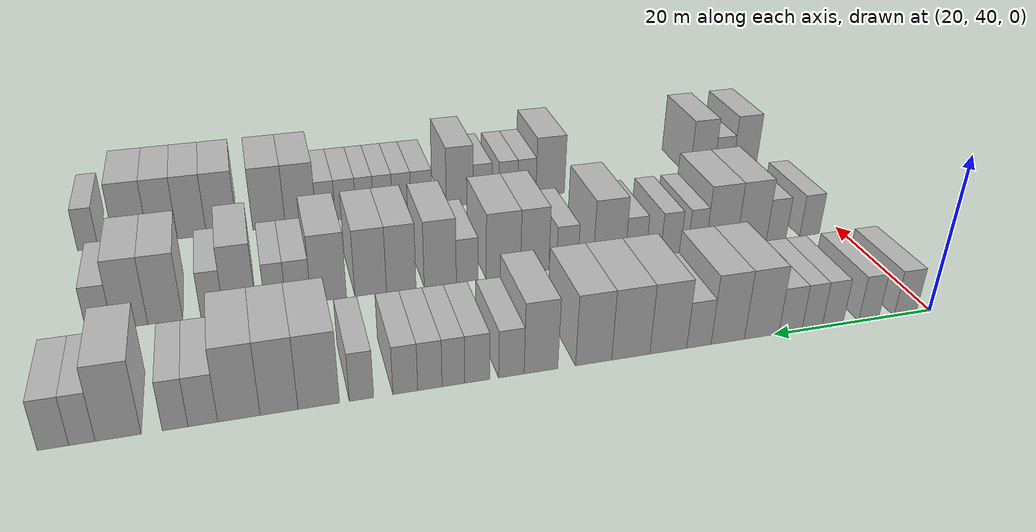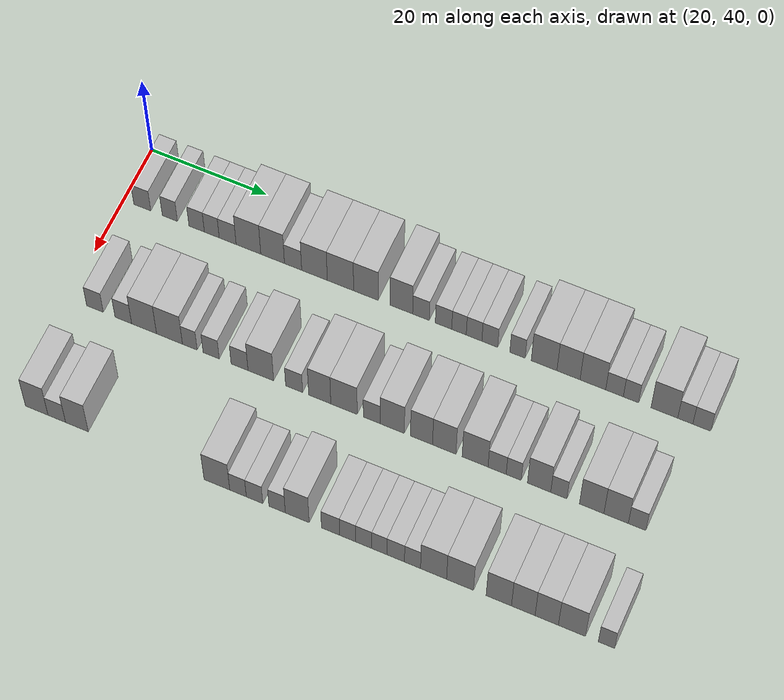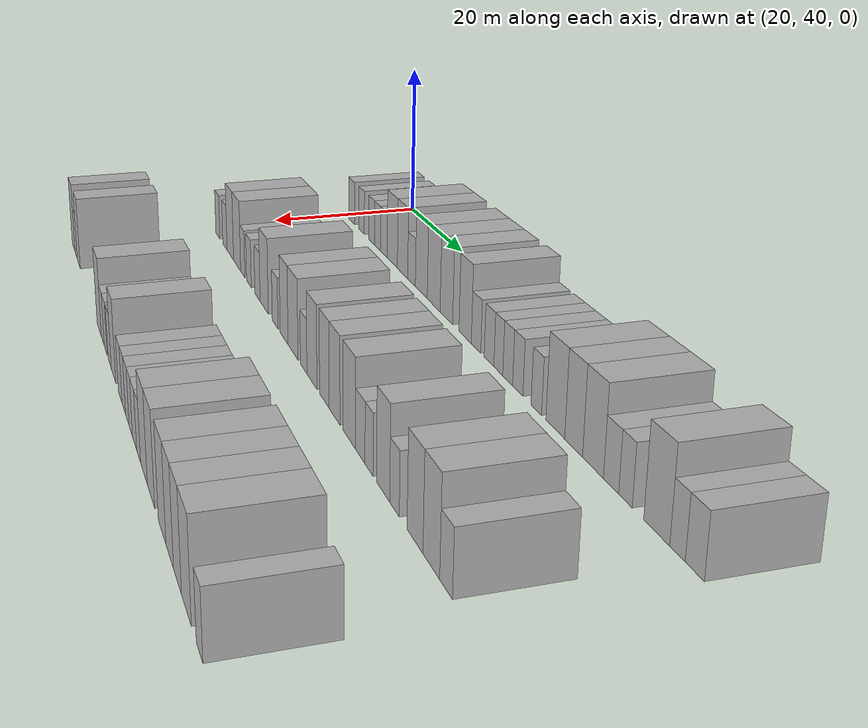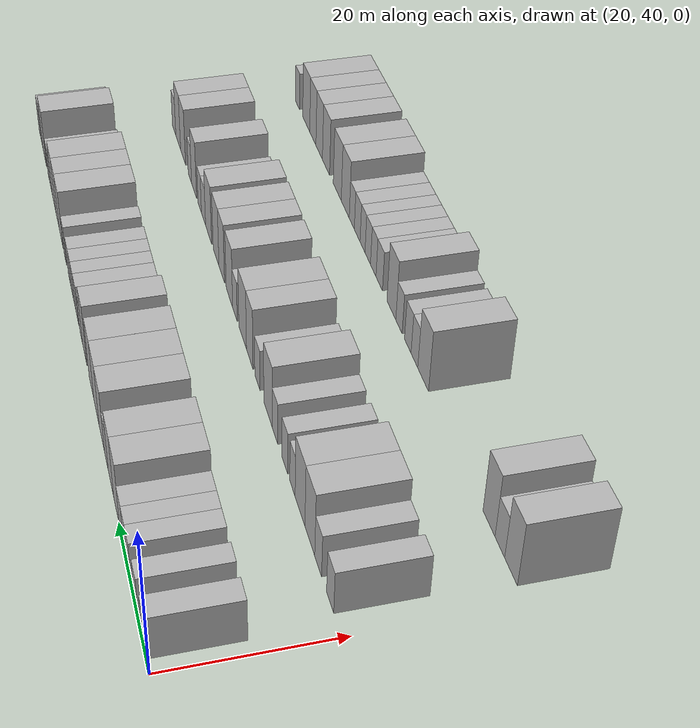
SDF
<sdf version="1.6">
 <world name="default">
  <model name="building_76">
   <static>1</static>
   <pose>25.0000 43.2777 0 0.000000 0.000000 0.000000</pose>
   <link name="link">
    <pose>0 0 3.00 0 0 0</pose>
    <collision name="collision"><geometry><box><size>10.0000 2.9411 6.0000</size></box></geometry></collision>
    <visual name="visual">
     <cast_shadows>0</cast_shadows>
     <geometry><box><size>10.0000 2.9411 6.0000</size></box></geometry>
     <material>
      <script>
       <uri>model://HANNAS_wall/materials/scripts</uri>
       <uri>model://HANNAS_wall/materials/textures</uri>
       <name>vrc/HANNAS_wall</name>
      </script>
     </material>
    </visual>
   </link>
  </model>
  <model name="building_77">
   <static>1</static>
   <pose>25.0000 48.0577 0 0.000000 0.000000 0.000000</pose>
   <link name="link">
    <pose>0 0 3.00 0 0 0</pose>
    <collision name="collision"><geometry><box><size>10.0000 2.6188 6.0000</size></box></geometry></collision>
    <visual name="visual">
     <cast_shadows>0</cast_shadows>
     <geometry><box><size>10.0000 2.6188 6.0000</size></box></geometry>
     <material>
      <script>
       <uri>model://HANNAS_wall/materials/scripts</uri>
       <uri>model://HANNAS_wall/materials/textures</uri>
       <name>vrc/HANNAS_wall</name>
      </script>
     </material>
    </visual>
   </link>
  </model>
  <model name="building_78">
   <static>1</static>
   <pose>25.0000 52.6957 0 0.000000 0.000000 0.000000</pose>
   <link name="link">
    <pose>0 0 3.00 0 0 0</pose>
    <collision name="collision"><geometry><box><size>10.0000 2.6572 6.0000</size></box></geometry></collision>
    <visual name="visual">
     <cast_shadows>0</cast_shadows>
     <geometry><box><size>10.0000 2.6572 6.0000</size></box></geometry>
     <material>
      <script>
       <uri>model://HANNAS_wall/materials/scripts</uri>
       <uri>model://HANNAS_wall/materials/textures</uri>
       <name>vrc/HANNAS_wall</name>
      </script>
     </material>
    </visual>
   </link>
  </model>
  <model name="building_79">
   <static>1</static>
   <pose>25.0000 55.3002 0 0.000000 0.000000 0.000000</pose>
   <link name="link">
    <pose>0 0 3.00 0 0 0</pose>
    <collision name="collision"><geometry><box><size>10.0000 2.5519 6.0000</size></box></geometry></collision>
    <visual name="visual">
     <cast_shadows>0</cast_shadows>
     <geometry><box><size>10.0000 2.5519 6.0000</size></box></geometry>
     <material>
      <script>
       <uri>model://HANNAS_wall/materials/scripts</uri>
       <uri>model://HANNAS_wall/materials/textures</uri>
       <name>vrc/HANNAS_wall</name>
      </script>
     </material>
    </visual>
   </link>
  </model>
  <model name="building_80">
   <static>1</static>
   <pose>25.0000 58.0288 0 0.000000 0.000000 0.000000</pose>
   <link name="link">
    <pose>0 0 3.00 0 0 0</pose>
    <collision name="collision"><geometry><box><size>10.0000 2.9053 6.0000</size></box></geometry></collision>
    <visual name="visual">
     <cast_shadows>0</cast_shadows>
     <geometry><box><size>10.0000 2.9053 6.0000</size></box></geometry>
     <material>
      <script>
       <uri>model://HANNAS_wall/materials/scripts</uri>
       <uri>model://HANNAS_wall/materials/textures</uri>
       <name>vrc/HANNAS_wall</name>
      </script>
     </material>
    </visual>
   </link>
  </model>
  <model name="building_81">
   <static>1</static>
   <pose>25.0000 61.5949 0 0.000000 0.000000 0.000000</pose>
   <link name="link">
    <pose>0 0 4.50 0 0 0</pose>
    <collision name="collision"><geometry><box><size>10.0000 4.2269 9.0000</size></box></geometry></collision>
    <visual name="visual">
     <cast_shadows>0</cast_shadows>
     <geometry><box><size>10.0000 4.2269 9.0000</size></box></geometry>
     <material>
      <script>
       <uri>model://HANNAS_wall/materials/scripts</uri>
       <uri>model://HANNAS_wall/materials/textures</uri>
       <name>vrc/HANNAS_wall</name>
      </script>
     </material>
    </visual>
   </link>
  </model>
  <model name="building_82">
   <static>1</static>
   <pose>25.0000 65.7298 0 0.000000 0.000000 0.000000</pose>
   <link name="link">
    <pose>0 0 4.50 0 0 0</pose>
    <collision name="collision"><geometry><box><size>10.0000 4.0429 9.0000</size></box></geometry></collision>
    <visual name="visual">
     <cast_shadows>0</cast_shadows>
     <geometry><box><size>10.0000 4.0429 9.0000</size></box></geometry>
     <material>
      <script>
       <uri>model://HANNAS_wall/materials/scripts</uri>
       <uri>model://HANNAS_wall/materials/textures</uri>
       <name>vrc/HANNAS_wall</name>
      </script>
     </material>
    </visual>
   </link>
  </model>
  <model name="building_83">
   <static>1</static>
   <pose>25.0000 69.2131 0 0.000000 0.000000 0.000000</pose>
   <link name="link">
    <pose>0 0 3.00 0 0 0</pose>
    <collision name="collision"><geometry><box><size>10.0000 2.9238 6.0000</size></box></geometry></collision>
    <visual name="visual">
     <cast_shadows>0</cast_shadows>
     <geometry><box><size>10.0000 2.9238 6.0000</size></box></geometry>
     <material>
      <script>
       <uri>model://HANNAS_wall/materials/scripts</uri>
       <uri>model://HANNAS_wall/materials/textures</uri>
       <name>vrc/HANNAS_wall</name>
      </script>
     </material>
    </visual>
   </link>
  </model>
  <model name="building_84">
   <static>1</static>
   <pose>25.0000 72.8474 0 0.000000 0.000000 0.000000</pose>
   <link name="link">
    <pose>0 0 4.50 0 0 0</pose>
    <collision name="collision"><geometry><box><size>10.0000 4.3449 9.0000</size></box></geometry></collision>
    <visual name="visual">
     <cast_shadows>0</cast_shadows>
     <geometry><box><size>10.0000 4.3449 9.0000</size></box></geometry>
     <material>
      <script>
       <uri>model://HANNAS_wall/materials/scripts</uri>
       <uri>model://HANNAS_wall/materials/textures</uri>
       <name>vrc/HANNAS_wall</name>
      </script>
     </material>
    </visual>
   </link>
  </model>
  <model name="building_85">
   <static>1</static>
   <pose>25.0000 77.2461 0 0.000000 0.000000 0.000000</pose>
   <link name="link">
    <pose>0 0 4.50 0 0 0</pose>
    <collision name="collision"><geometry><box><size>10.0000 4.4524 9.0000</size></box></geometry></collision>
    <visual name="visual">
     <cast_shadows>0</cast_shadows>
     <geometry><box><size>10.0000 4.4524 9.0000</size></box></geometry>
     <material>
      <script>
       <uri>model://HANNAS_wall/materials/scripts</uri>
       <uri>model://HANNAS_wall/materials/textures</uri>
       <name>vrc/HANNAS_wall</name>
      </script>
     </material>
    </visual>
   </link>
  </model>
  <model name="building_86">
   <static>1</static>
   <pose>25.0000 81.5378 0 0.000000 0.000000 0.000000</pose>
   <link name="link">
    <pose>0 0 4.50 0 0 0</pose>
    <collision name="collision"><geometry><box><size>10.0000 4.1309 9.0000</size></box></geometry></collision>
    <visual name="visual">
     <cast_shadows>0</cast_shadows>
     <geometry><box><size>10.0000 4.1309 9.0000</size></box></geometry>
     <material>
      <script>
       <uri>model://HANNAS_wall/materials/scripts</uri>
       <uri>model://HANNAS_wall/materials/textures</uri>
       <name>vrc/HANNAS_wall</name>
      </script>
     </material>
    </visual>
   </link>
  </model>
  <model name="building_87">
   <static>1</static>
   <pose>25.0000 87.4929 0 0.000000 0.000000 0.000000</pose>
   <link name="link">
    <pose>0 0 4.50 0 0 0</pose>
    <collision name="collision"><geometry><box><size>10.0000 3.7794 9.0000</size></box></geometry></collision>
    <visual name="visual">
     <cast_shadows>0</cast_shadows>
     <geometry><box><size>10.0000 3.7794 9.0000</size></box></geometry>
     <material>
      <script>
       <uri>model://HANNAS_wall/materials/scripts</uri>
       <uri>model://HANNAS_wall/materials/textures</uri>
       <name>vrc/HANNAS_wall</name>
      </script>
     </material>
    </visual>
   </link>
  </model>
  <model name="building_88">
   <static>1</static>
   <pose>25.0000 90.7781 0 0.000000 0.000000 0.000000</pose>
   <link name="link">
    <pose>0 0 3.00 0 0 0</pose>
    <collision name="collision"><geometry><box><size>10.0000 2.7909 6.0000</size></box></geometry></collision>
    <visual name="visual">
     <cast_shadows>0</cast_shadows>
     <geometry><box><size>10.0000 2.7909 6.0000</size></box></geometry>
     <material>
      <script>
       <uri>model://HANNAS_wall/materials/scripts</uri>
       <uri>model://HANNAS_wall/materials/textures</uri>
       <name>vrc/HANNAS_wall</name>
      </script>
     </material>
    </visual>
   </link>
  </model>
  <model name="building_89">
   <static>1</static>
   <pose>25.0000 94.5362 0 0.000000 0.000000 0.000000</pose>
   <link name="link">
    <pose>0 0 3.00 0 0 0</pose>
    <collision name="collision"><geometry><box><size>10.0000 2.7254 6.0000</size></box></geometry></collision>
    <visual name="visual">
     <cast_shadows>0</cast_shadows>
     <geometry><box><size>10.0000 2.7254 6.0000</size></box></geometry>
     <material>
      <script>
       <uri>model://HANNAS_wall/materials/scripts</uri>
       <uri>model://HANNAS_wall/materials/textures</uri>
       <name>vrc/HANNAS_wall</name>
      </script>
     </material>
    </visual>
   </link>
  </model>
  <model name="building_90">
   <static>1</static>
   <pose>25.0000 97.1035 0 0.000000 0.000000 0.000000</pose>
   <link name="link">
    <pose>0 0 3.00 0 0 0</pose>
    <collision name="collision"><geometry><box><size>10.0000 2.4094 6.0000</size></box></geometry></collision>
    <visual name="visual">
     <cast_shadows>0</cast_shadows>
     <geometry><box><size>10.0000 2.4094 6.0000</size></box></geometry>
     <material>
      <script>
       <uri>model://HANNAS_wall/materials/scripts</uri>
       <uri>model://HANNAS_wall/materials/textures</uri>
       <name>vrc/HANNAS_wall</name>
      </script>
     </material>
    </visual>
   </link>
  </model>
  <model name="building_91">
   <static>1</static>
   <pose>25.0000 99.6021 0 0.000000 0.000000 0.000000</pose>
   <link name="link">
    <pose>0 0 3.00 0 0 0</pose>
    <collision name="collision"><geometry><box><size>10.0000 2.5877 6.0000</size></box></geometry></collision>
    <visual name="visual">
     <cast_shadows>0</cast_shadows>
     <geometry><box><size>10.0000 2.5877 6.0000</size></box></geometry>
     <material>
      <script>
       <uri>model://HANNAS_wall/materials/scripts</uri>
       <uri>model://HANNAS_wall/materials/textures</uri>
       <name>vrc/HANNAS_wall</name>
      </script>
     </material>
    </visual>
   </link>
  </model>
  <model name="building_92">
   <static>1</static>
   <pose>25.0000 102.2067 0 0.000000 0.000000 0.000000</pose>
   <link name="link">
    <pose>0 0 3.00 0 0 0</pose>
    <collision name="collision"><geometry><box><size>10.0000 2.6216 6.0000</size></box></geometry></collision>
    <visual name="visual">
     <cast_shadows>0</cast_shadows>
     <geometry><box><size>10.0000 2.6216 6.0000</size></box></geometry>
     <material>
      <script>
       <uri>model://HANNAS_wall/materials/scripts</uri>
       <uri>model://HANNAS_wall/materials/textures</uri>
       <name>vrc/HANNAS_wall</name>
      </script>
     </material>
    </visual>
   </link>
  </model>
  <model name="building_93">
   <static>1</static>
   <pose>25.0000 106.7797 0 0.000000 0.000000 0.000000</pose>
   <link name="link">
    <pose>0 0 3.00 0 0 0</pose>
    <collision name="collision"><geometry><box><size>10.0000 2.5244 6.0000</size></box></geometry></collision>
    <visual name="visual">
     <cast_shadows>0</cast_shadows>
     <geometry><box><size>10.0000 2.5244 6.0000</size></box></geometry>
     <material>
      <script>
       <uri>model://HANNAS_wall/materials/scripts</uri>
       <uri>model://HANNAS_wall/materials/textures</uri>
       <name>vrc/HANNAS_wall</name>
      </script>
     </material>
    </visual>
   </link>
  </model>
  <model name="building_94">
   <static>1</static>
   <pose>25.0000 111.1509 0 0.000000 0.000000 0.000000</pose>
   <link name="link">
    <pose>0 0 4.50 0 0 0</pose>
    <collision name="collision"><geometry><box><size>10.0000 4.2179 9.0000</size></box></geometry></collision>
    <visual name="visual">
     <cast_shadows>0</cast_shadows>
     <geometry><box><size>10.0000 4.2179 9.0000</size></box></geometry>
     <material>
      <script>
       <uri>model://HANNAS_wall/materials/scripts</uri>
       <uri>model://HANNAS_wall/materials/textures</uri>
       <name>vrc/HANNAS_wall</name>
      </script>
     </material>
    </visual>
   </link>
  </model>
  <model name="building_95">
   <static>1</static>
   <pose>25.0000 115.1524 0 0.000000 0.000000 0.000000</pose>
   <link name="link">
    <pose>0 0 4.50 0 0 0</pose>
    <collision name="collision"><geometry><box><size>10.0000 3.7852 9.0000</size></box></geometry></collision>
    <visual name="visual">
     <cast_shadows>0</cast_shadows>
     <geometry><box><size>10.0000 3.7852 9.0000</size></box></geometry>
     <material>
      <script>
       <uri>model://HANNAS_wall/materials/scripts</uri>
       <uri>model://HANNAS_wall/materials/textures</uri>
       <name>vrc/HANNAS_wall</name>
      </script>
     </material>
    </visual>
   </link>
  </model>
  <model name="building_96">
   <static>1</static>
   <pose>25.0000 119.1330 0 0.000000 0.000000 0.000000</pose>
   <link name="link">
    <pose>0 0 4.50 0 0 0</pose>
    <collision name="collision"><geometry><box><size>10.0000 4.1760 9.0000</size></box></geometry></collision>
    <visual name="visual">
     <cast_shadows>0</cast_shadows>
     <geometry><box><size>10.0000 4.1760 9.0000</size></box></geometry>
     <material>
      <script>
       <uri>model://HANNAS_wall/materials/scripts</uri>
       <uri>model://HANNAS_wall/materials/textures</uri>
       <name>vrc/HANNAS_wall</name>
      </script>
     </material>
    </visual>
   </link>
  </model>
  <model name="building_97">
   <static>1</static>
   <pose>25.0000 122.6545 0 0.000000 0.000000 0.000000</pose>
   <link name="link">
    <pose>0 0 3.00 0 0 0</pose>
    <collision name="collision"><geometry><box><size>10.0000 2.8671 6.0000</size></box></geometry></collision>
    <visual name="visual">
     <cast_shadows>0</cast_shadows>
     <geometry><box><size>10.0000 2.8671 6.0000</size></box></geometry>
     <material>
      <script>
       <uri>model://HANNAS_wall/materials/scripts</uri>
       <uri>model://HANNAS_wall/materials/textures</uri>
       <name>vrc/HANNAS_wall</name>
      </script>
     </material>
    </visual>
   </link>
  </model>
  <model name="building_98">
   <static>1</static>
   <pose>25.0000 125.3244 0 0.000000 0.000000 0.000000</pose>
   <link name="link">
    <pose>0 0 3.00 0 0 0</pose>
    <collision name="collision"><geometry><box><size>10.0000 2.4727 6.0000</size></box></geometry></collision>
    <visual name="visual">
     <cast_shadows>0</cast_shadows>
     <geometry><box><size>10.0000 2.4727 6.0000</size></box></geometry>
     <material>
      <script>
       <uri>model://HANNAS_wall/materials/scripts</uri>
       <uri>model://HANNAS_wall/materials/textures</uri>
       <name>vrc/HANNAS_wall</name>
      </script>
     </material>
    </visual>
   </link>
  </model>
  <model name="building_99">
   <static>1</static>
   <pose>25.0000 130.7162 0 0.000000 0.000000 0.000000</pose>
   <link name="link">
    <pose>0 0 4.50 0 0 0</pose>
    <collision name="collision"><geometry><box><size>10.0000 4.3109 9.0000</size></box></geometry></collision>
    <visual name="visual">
     <cast_shadows>0</cast_shadows>
     <geometry><box><size>10.0000 4.3109 9.0000</size></box></geometry>
     <material>
      <script>
       <uri>model://HANNAS_wall/materials/scripts</uri>
       <uri>model://HANNAS_wall/materials/textures</uri>
       <name>vrc/HANNAS_wall</name>
      </script>
     </material>
    </visual>
   </link>
  </model>
  <model name="building_100">
   <static>1</static>
   <pose>25.0000 134.0895 0 0.000000 0.000000 0.000000</pose>
   <link name="link">
    <pose>0 0 3.00 0 0 0</pose>
    <collision name="collision"><geometry><box><size>10.0000 2.4358 6.0000</size></box></geometry></collision>
    <visual name="visual">
     <cast_shadows>0</cast_shadows>
     <geometry><box><size>10.0000 2.4358 6.0000</size></box></geometry>
     <material>
      <script>
       <uri>model://HANNAS_wall/materials/scripts</uri>
       <uri>model://HANNAS_wall/materials/textures</uri>
       <name>vrc/HANNAS_wall</name>
      </script>
     </material>
    </visual>
   </link>
  </model>
  <model name="building_101">
   <static>1</static>
   <pose>25.0000 136.7493 0 0.000000 0.000000 0.000000</pose>
   <link name="link">
    <pose>0 0 3.00 0 0 0</pose>
    <collision name="collision"><geometry><box><size>10.0000 2.8837 6.0000</size></box></geometry></collision>
    <visual name="visual">
     <cast_shadows>0</cast_shadows>
     <geometry><box><size>10.0000 2.8837 6.0000</size></box></geometry>
     <material>
      <script>
       <uri>model://HANNAS_wall/materials/scripts</uri>
       <uri>model://HANNAS_wall/materials/textures</uri>
       <name>vrc/HANNAS_wall</name>
      </script>
     </material>
    </visual>
   </link>
  </model>
  <model name="building_195">
   <static>1</static>
   <pose>44.0000 44.5569 0 0.000000 0.000000 0.000000</pose>
   <link name="link">
    <pose>0 0 3.00 0 0 0</pose>
    <collision name="collision"><geometry><box><size>10.0000 2.8465 6.0000</size></box></geometry></collision>
    <visual name="visual">
     <cast_shadows>0</cast_shadows>
     <geometry><box><size>10.0000 2.8465 6.0000</size></box></geometry>
     <material>
      <script>
       <uri>model://HANNAS_wall/materials/scripts</uri>
       <uri>model://HANNAS_wall/materials/textures</uri>
       <name>vrc/HANNAS_wall</name>
      </script>
     </material>
    </visual>
   </link>
  </model>
  <model name="building_196">
   <static>1</static>
   <pose>44.0000 49.3984 0 0.000000 0.000000 0.000000</pose>
   <link name="link">
    <pose>0 0 3.00 0 0 0</pose>
    <collision name="collision"><geometry><box><size>10.0000 2.8364 6.0000</size></box></geometry></collision>
    <visual name="visual">
     <cast_shadows>0</cast_shadows>
     <geometry><box><size>10.0000 2.8364 6.0000</size></box></geometry>
     <material>
      <script>
       <uri>model://HANNAS_wall/materials/scripts</uri>
       <uri>model://HANNAS_wall/materials/textures</uri>
       <name>vrc/HANNAS_wall</name>
      </script>
     </material>
    </visual>
   </link>
  </model>
  <model name="building_197">
   <static>1</static>
   <pose>44.0000 52.9321 0 0.000000 0.000000 0.000000</pose>
   <link name="link">
    <pose>0 0 4.50 0 0 0</pose>
    <collision name="collision"><geometry><box><size>10.0000 4.2311 9.0000</size></box></geometry></collision>
    <visual name="visual">
     <cast_shadows>0</cast_shadows>
     <geometry><box><size>10.0000 4.2311 9.0000</size></box></geometry>
     <material>
      <script>
       <uri>model://HANNAS_wall/materials/scripts</uri>
       <uri>model://HANNAS_wall/materials/textures</uri>
       <name>vrc/HANNAS_wall</name>
      </script>
     </material>
    </visual>
   </link>
  </model>
  <model name="building_198">
   <static>1</static>
   <pose>44.0000 57.2439 0 0.000000 0.000000 0.000000</pose>
   <link name="link">
    <pose>0 0 4.50 0 0 0</pose>
    <collision name="collision"><geometry><box><size>10.0000 4.3925 9.0000</size></box></geometry></collision>
    <visual name="visual">
     <cast_shadows>0</cast_shadows>
     <geometry><box><size>10.0000 4.3925 9.0000</size></box></geometry>
     <material>
      <script>
       <uri>model://HANNAS_wall/materials/scripts</uri>
       <uri>model://HANNAS_wall/materials/textures</uri>
       <name>vrc/HANNAS_wall</name>
      </script>
     </material>
    </visual>
   </link>
  </model>
  <model name="building_199">
   <static>1</static>
   <pose>44.0000 60.6867 0 0.000000 0.000000 0.000000</pose>
   <link name="link">
    <pose>0 0 3.00 0 0 0</pose>
    <collision name="collision"><geometry><box><size>10.0000 2.4932 6.0000</size></box></geometry></collision>
    <visual name="visual">
     <cast_shadows>0</cast_shadows>
     <geometry><box><size>10.0000 2.4932 6.0000</size></box></geometry>
     <material>
      <script>
       <uri>model://HANNAS_wall/materials/scripts</uri>
       <uri>model://HANNAS_wall/materials/textures</uri>
       <name>vrc/HANNAS_wall</name>
      </script>
     </material>
    </visual>
   </link>
  </model>
  <model name="building_200">
   <static>1</static>
   <pose>44.0000 64.2889 0 0.000000 0.000000 0.000000</pose>
   <link name="link">
    <pose>0 0 3.00 0 0 0</pose>
    <collision name="collision"><geometry><box><size>10.0000 2.7112 6.0000</size></box></geometry></collision>
    <visual name="visual">
     <cast_shadows>0</cast_shadows>
     <geometry><box><size>10.0000 2.7112 6.0000</size></box></geometry>
     <material>
      <script>
       <uri>model://HANNAS_wall/materials/scripts</uri>
       <uri>model://HANNAS_wall/materials/textures</uri>
       <name>vrc/HANNAS_wall</name>
      </script>
     </material>
    </visual>
   </link>
  </model>
  <model name="building_201">
   <static>1</static>
   <pose>44.0000 69.0584 0 0.000000 0.000000 0.000000</pose>
   <link name="link">
    <pose>0 0 3.00 0 0 0</pose>
    <collision name="collision"><geometry><box><size>10.0000 2.8279 6.0000</size></box></geometry></collision>
    <visual name="visual">
     <cast_shadows>0</cast_shadows>
     <geometry><box><size>10.0000 2.8279 6.0000</size></box></geometry>
     <material>
      <script>
       <uri>model://HANNAS_wall/materials/scripts</uri>
       <uri>model://HANNAS_wall/materials/textures</uri>
       <name>vrc/HANNAS_wall</name>
      </script>
     </material>
    </visual>
   </link>
  </model>
  <model name="building_202">
   <static>1</static>
   <pose>44.0000 72.6150 0 0.000000 0.000000 0.000000</pose>
   <link name="link">
    <pose>0 0 4.50 0 0 0</pose>
    <collision name="collision"><geometry><box><size>10.0000 4.2852 9.0000</size></box></geometry></collision>
    <visual name="visual">
     <cast_shadows>0</cast_shadows>
     <geometry><box><size>10.0000 4.2852 9.0000</size></box></geometry>
     <material>
      <script>
       <uri>model://HANNAS_wall/materials/scripts</uri>
       <uri>model://HANNAS_wall/materials/textures</uri>
       <name>vrc/HANNAS_wall</name>
      </script>
     </material>
    </visual>
   </link>
  </model>
  <model name="building_203">
   <static>1</static>
   <pose>44.0000 78.1698 0 0.000000 0.000000 0.000000</pose>
   <link name="link">
    <pose>0 0 3.00 0 0 0</pose>
    <collision name="collision"><geometry><box><size>10.0000 2.8243 6.0000</size></box></geometry></collision>
    <visual name="visual">
     <cast_shadows>0</cast_shadows>
     <geometry><box><size>10.0000 2.8243 6.0000</size></box></geometry>
     <material>
      <script>
       <uri>model://HANNAS_wall/materials/scripts</uri>
       <uri>model://HANNAS_wall/materials/textures</uri>
       <name>vrc/HANNAS_wall</name>
      </script>
     </material>
    </visual>
   </link>
  </model>
  <model name="building_204">
   <static>1</static>
   <pose>44.0000 82.4137 0 0.000000 0.000000 0.000000</pose>
   <link name="link">
    <pose>0 0 4.50 0 0 0</pose>
    <collision name="collision"><geometry><box><size>10.0000 3.6635 9.0000</size></box></geometry></collision>
    <visual name="visual">
     <cast_shadows>0</cast_shadows>
     <geometry><box><size>10.0000 3.6635 9.0000</size></box></geometry>
     <material>
      <script>
       <uri>model://HANNAS_wall/materials/scripts</uri>
       <uri>model://HANNAS_wall/materials/textures</uri>
       <name>vrc/HANNAS_wall</name>
      </script>
     </material>
    </visual>
   </link>
  </model>
  <model name="building_205">
   <static>1</static>
   <pose>44.0000 86.4354 0 0.000000 0.000000 0.000000</pose>
   <link name="link">
    <pose>0 0 4.50 0 0 0</pose>
    <collision name="collision"><geometry><box><size>10.0000 4.3800 9.0000</size></box></geometry></collision>
    <visual name="visual">
     <cast_shadows>0</cast_shadows>
     <geometry><box><size>10.0000 4.3800 9.0000</size></box></geometry>
     <material>
      <script>
       <uri>model://HANNAS_wall/materials/scripts</uri>
       <uri>model://HANNAS_wall/materials/textures</uri>
       <name>vrc/HANNAS_wall</name>
      </script>
     </material>
    </visual>
   </link>
  </model>
  <model name="building_206">
   <static>1</static>
   <pose>44.0000 90.9999 0 0.000000 0.000000 0.000000</pose>
   <link name="link">
    <pose>0 0 3.00 0 0 0</pose>
    <collision name="collision"><geometry><box><size>10.0000 2.7491 6.0000</size></box></geometry></collision>
    <visual name="visual">
     <cast_shadows>0</cast_shadows>
     <geometry><box><size>10.0000 2.7491 6.0000</size></box></geometry>
     <material>
      <script>
       <uri>model://HANNAS_wall/materials/scripts</uri>
       <uri>model://HANNAS_wall/materials/textures</uri>
       <name>vrc/HANNAS_wall</name>
      </script>
     </material>
    </visual>
   </link>
  </model>
  <model name="building_207">
   <static>1</static>
   <pose>44.0000 94.3649 0 0.000000 0.000000 0.000000</pose>
   <link name="link">
    <pose>0 0 4.50 0 0 0</pose>
    <collision name="collision"><geometry><box><size>10.0000 3.9808 9.0000</size></box></geometry></collision>
    <visual name="visual">
     <cast_shadows>0</cast_shadows>
     <geometry><box><size>10.0000 3.9808 9.0000</size></box></geometry>
     <material>
      <script>
       <uri>model://HANNAS_wall/materials/scripts</uri>
       <uri>model://HANNAS_wall/materials/textures</uri>
       <name>vrc/HANNAS_wall</name>
      </script>
     </material>
    </visual>
   </link>
  </model>
  <model name="building_208">
   <static>1</static>
   <pose>44.0000 99.1560 0 0.000000 0.000000 0.000000</pose>
   <link name="link">
    <pose>0 0 4.50 0 0 0</pose>
    <collision name="collision"><geometry><box><size>10.0000 3.6014 9.0000</size></box></geometry></collision>
    <visual name="visual">
     <cast_shadows>0</cast_shadows>
     <geometry><box><size>10.0000 3.6014 9.0000</size></box></geometry>
     <material>
      <script>
       <uri>model://HANNAS_wall/materials/scripts</uri>
       <uri>model://HANNAS_wall/materials/textures</uri>
       <name>vrc/HANNAS_wall</name>
      </script>
     </material>
    </visual>
   </link>
  </model>
  <model name="building_209">
   <static>1</static>
   <pose>44.0000 102.8638 0 0.000000 0.000000 0.000000</pose>
   <link name="link">
    <pose>0 0 4.50 0 0 0</pose>
    <collision name="collision"><geometry><box><size>10.0000 3.8141 9.0000</size></box></geometry></collision>
    <visual name="visual">
     <cast_shadows>0</cast_shadows>
     <geometry><box><size>10.0000 3.8141 9.0000</size></box></geometry>
     <material>
      <script>
       <uri>model://HANNAS_wall/materials/scripts</uri>
       <uri>model://HANNAS_wall/materials/textures</uri>
       <name>vrc/HANNAS_wall</name>
      </script>
     </material>
    </visual>
   </link>
  </model>
  <model name="building_210">
   <static>1</static>
   <pose>44.0000 107.8731 0 0.000000 0.000000 0.000000</pose>
   <link name="link">
    <pose>0 0 4.50 0 0 0</pose>
    <collision name="collision"><geometry><box><size>10.0000 4.2046 9.0000</size></box></geometry></collision>
    <visual name="visual">
     <cast_shadows>0</cast_shadows>
     <geometry><box><size>10.0000 4.2046 9.0000</size></box></geometry>
     <material>
      <script>
       <uri>model://HANNAS_wall/materials/scripts</uri>
       <uri>model://HANNAS_wall/materials/textures</uri>
       <name>vrc/HANNAS_wall</name>
      </script>
     </material>
    </visual>
   </link>
  </model>
  <model name="building_211">
   <static>1</static>
   <pose>44.0000 111.4370 0 0.000000 0.000000 0.000000</pose>
   <link name="link">
    <pose>0 0 3.00 0 0 0</pose>
    <collision name="collision"><geometry><box><size>10.0000 2.9232 6.0000</size></box></geometry></collision>
    <visual name="visual">
     <cast_shadows>0</cast_shadows>
     <geometry><box><size>10.0000 2.9232 6.0000</size></box></geometry>
     <material>
      <script>
       <uri>model://HANNAS_wall/materials/scripts</uri>
       <uri>model://HANNAS_wall/materials/textures</uri>
       <name>vrc/HANNAS_wall</name>
      </script>
     </material>
    </visual>
   </link>
  </model>
  <model name="building_212">
   <static>1</static>
   <pose>44.0000 114.1126 0 0.000000 0.000000 0.000000</pose>
   <link name="link">
    <pose>0 0 3.00 0 0 0</pose>
    <collision name="collision"><geometry><box><size>10.0000 2.4280 6.0000</size></box></geometry></collision>
    <visual name="visual">
     <cast_shadows>0</cast_shadows>
     <geometry><box><size>10.0000 2.4280 6.0000</size></box></geometry>
     <material>
      <script>
       <uri>model://HANNAS_wall/materials/scripts</uri>
       <uri>model://HANNAS_wall/materials/textures</uri>
       <name>vrc/HANNAS_wall</name>
      </script>
     </material>
    </visual>
   </link>
  </model>
  <model name="building_213">
   <static>1</static>
   <pose>44.0000 118.1985 0 0.000000 0.000000 0.000000</pose>
   <link name="link">
    <pose>0 0 4.50 0 0 0</pose>
    <collision name="collision"><geometry><box><size>10.0000 3.7439 9.0000</size></box></geometry></collision>
    <visual name="visual">
     <cast_shadows>0</cast_shadows>
     <geometry><box><size>10.0000 3.7439 9.0000</size></box></geometry>
     <material>
      <script>
       <uri>model://HANNAS_wall/materials/scripts</uri>
       <uri>model://HANNAS_wall/materials/textures</uri>
       <name>vrc/HANNAS_wall</name>
      </script>
     </material>
    </visual>
   </link>
  </model>
  <model name="building_214">
   <static>1</static>
   <pose>44.0000 121.3633 0 0.000000 0.000000 0.000000</pose>
   <link name="link">
    <pose>0 0 3.00 0 0 0</pose>
    <collision name="collision"><geometry><box><size>10.0000 2.5857 6.0000</size></box></geometry></collision>
    <visual name="visual">
     <cast_shadows>0</cast_shadows>
     <geometry><box><size>10.0000 2.5857 6.0000</size></box></geometry>
     <material>
      <script>
       <uri>model://HANNAS_wall/materials/scripts</uri>
       <uri>model://HANNAS_wall/materials/textures</uri>
       <name>vrc/HANNAS_wall</name>
      </script>
     </material>
    </visual>
   </link>
  </model>
  <model name="building_215">
   <static>1</static>
   <pose>44.0000 126.6058 0 0.000000 0.000000 0.000000</pose>
   <link name="link">
    <pose>0 0 4.50 0 0 0</pose>
    <collision name="collision"><geometry><box><size>10.0000 3.8992 9.0000</size></box></geometry></collision>
    <visual name="visual">
     <cast_shadows>0</cast_shadows>
     <geometry><box><size>10.0000 3.8992 9.0000</size></box></geometry>
     <material>
      <script>
       <uri>model://HANNAS_wall/materials/scripts</uri>
       <uri>model://HANNAS_wall/materials/textures</uri>
       <name>vrc/HANNAS_wall</name>
      </script>
     </material>
    </visual>
   </link>
  </model>
  <model name="building_216">
   <static>1</static>
   <pose>44.0000 130.4934 0 0.000000 0.000000 0.000000</pose>
   <link name="link">
    <pose>0 0 4.50 0 0 0</pose>
    <collision name="collision"><geometry><box><size>10.0000 3.8760 9.0000</size></box></geometry></collision>
    <visual name="visual">
     <cast_shadows>0</cast_shadows>
     <geometry><box><size>10.0000 3.8760 9.0000</size></box></geometry>
     <material>
      <script>
       <uri>model://HANNAS_wall/materials/scripts</uri>
       <uri>model://HANNAS_wall/materials/textures</uri>
       <name>vrc/HANNAS_wall</name>
      </script>
     </material>
    </visual>
   </link>
  </model>
  <model name="building_217">
   <static>1</static>
   <pose>44.0000 133.8246 0 0.000000 0.000000 0.000000</pose>
   <link name="link">
    <pose>0 0 3.00 0 0 0</pose>
    <collision name="collision"><geometry><box><size>10.0000 2.7863 6.0000</size></box></geometry></collision>
    <visual name="visual">
     <cast_shadows>0</cast_shadows>
     <geometry><box><size>10.0000 2.7863 6.0000</size></box></geometry>
     <material>
      <script>
       <uri>model://HANNAS_wall/materials/scripts</uri>
       <uri>model://HANNAS_wall/materials/textures</uri>
       <name>vrc/HANNAS_wall</name>
      </script>
     </material>
    </visual>
   </link>
  </model>
  <model name="building_309">
   <static>1</static>
   <pose>63.0000 44.2931 0 0.000000 0.000000 0.000000</pose>
   <link name="link">
    <pose>0 0 4.50 0 0 0</pose>
    <collision name="collision"><geometry><box><size>10.0000 3.8034 9.0000</size></box></geometry></collision>
    <visual name="visual">
     <cast_shadows>0</cast_shadows>
     <geometry><box><size>10.0000 3.8034 9.0000</size></box></geometry>
     <material>
      <script>
       <uri>model://HANNAS_wall/materials/scripts</uri>
       <uri>model://HANNAS_wall/materials/textures</uri>
       <name>vrc/HANNAS_wall</name>
      </script>
     </material>
    </visual>
   </link>
  </model>
  <model name="building_310">
   <static>1</static>
   <pose>63.0000 47.6741 0 0.000000 0.000000 0.000000</pose>
   <link name="link">
    <pose>0 0 3.00 0 0 0</pose>
    <collision name="collision"><geometry><box><size>10.0000 2.9585 6.0000</size></box></geometry></collision>
    <visual name="visual">
     <cast_shadows>0</cast_shadows>
     <geometry><box><size>10.0000 2.9585 6.0000</size></box></geometry>
     <material>
      <script>
       <uri>model://HANNAS_wall/materials/scripts</uri>
       <uri>model://HANNAS_wall/materials/textures</uri>
       <name>vrc/HANNAS_wall</name>
      </script>
     </material>
    </visual>
   </link>
  </model>
  <model name="building_311">
   <static>1</static>
   <pose>63.0000 51.0627 0 0.000000 0.000000 0.000000</pose>
   <link name="link">
    <pose>0 0 4.50 0 0 0</pose>
    <collision name="collision"><geometry><box><size>10.0000 3.8187 9.0000</size></box></geometry></collision>
    <visual name="visual">
     <cast_shadows>0</cast_shadows>
     <geometry><box><size>10.0000 3.8187 9.0000</size></box></geometry>
     <material>
      <script>
       <uri>model://HANNAS_wall/materials/scripts</uri>
       <uri>model://HANNAS_wall/materials/textures</uri>
       <name>vrc/HANNAS_wall</name>
      </script>
     </material>
    </visual>
   </link>
  </model>
  <model name="building_312">
   <static>1</static>
   <pose>63.0000 74.3150 0 0.000000 0.000000 0.000000</pose>
   <link name="link">
    <pose>0 0 4.50 0 0 0</pose>
    <collision name="collision"><geometry><box><size>10.0000 4.2286 9.0000</size></box></geometry></collision>
    <visual name="visual">
     <cast_shadows>0</cast_shadows>
     <geometry><box><size>10.0000 4.2286 9.0000</size></box></geometry>
     <material>
      <script>
       <uri>model://HANNAS_wall/materials/scripts</uri>
       <uri>model://HANNAS_wall/materials/textures</uri>
       <name>vrc/HANNAS_wall</name>
      </script>
     </material>
    </visual>
   </link>
  </model>
  <model name="building_313">
   <static>1</static>
   <pose>63.0000 77.7840 0 0.000000 0.000000 0.000000</pose>
   <link name="link">
    <pose>0 0 3.00 0 0 0</pose>
    <collision name="collision"><geometry><box><size>10.0000 2.7095 6.0000</size></box></geometry></collision>
    <visual name="visual">
     <cast_shadows>0</cast_shadows>
     <geometry><box><size>10.0000 2.7095 6.0000</size></box></geometry>
     <material>
      <script>
       <uri>model://HANNAS_wall/materials/scripts</uri>
       <uri>model://HANNAS_wall/materials/textures</uri>
       <name>vrc/HANNAS_wall</name>
      </script>
     </material>
    </visual>
   </link>
  </model>
  <model name="building_314">
   <static>1</static>
   <pose>63.0000 80.4894 0 0.000000 0.000000 0.000000</pose>
   <link name="link">
    <pose>0 0 3.00 0 0 0</pose>
    <collision name="collision"><geometry><box><size>10.0000 2.7014 6.0000</size></box></geometry></collision>
    <visual name="visual">
     <cast_shadows>0</cast_shadows>
     <geometry><box><size>10.0000 2.7014 6.0000</size></box></geometry>
     <material>
      <script>
       <uri>model://HANNAS_wall/materials/scripts</uri>
       <uri>model://HANNAS_wall/materials/textures</uri>
       <name>vrc/HANNAS_wall</name>
      </script>
     </material>
    </visual>
   </link>
  </model>
  <model name="building_315">
   <static>1</static>
   <pose>63.0000 84.1739 0 0.000000 0.000000 0.000000</pose>
   <link name="link">
    <pose>0 0 3.00 0 0 0</pose>
    <collision name="collision"><geometry><box><size>10.0000 2.6675 6.0000</size></box></geometry></collision>
    <visual name="visual">
     <cast_shadows>0</cast_shadows>
     <geometry><box><size>10.0000 2.6675 6.0000</size></box></geometry>
     <material>
      <script>
       <uri>model://HANNAS_wall/materials/scripts</uri>
       <uri>model://HANNAS_wall/materials/textures</uri>
       <name>vrc/HANNAS_wall</name>
      </script>
     </material>
    </visual>
   </link>
  </model>
  <model name="building_316">
   <static>1</static>
   <pose>63.0000 87.4452 0 0.000000 0.000000 0.000000</pose>
   <link name="link">
    <pose>0 0 4.50 0 0 0</pose>
    <collision name="collision"><geometry><box><size>10.0000 3.8749 9.0000</size></box></geometry></collision>
    <visual name="visual">
     <cast_shadows>0</cast_shadows>
     <geometry><box><size>10.0000 3.8749 9.0000</size></box></geometry>
     <material>
      <script>
       <uri>model://HANNAS_wall/materials/scripts</uri>
       <uri>model://HANNAS_wall/materials/textures</uri>
       <name>vrc/HANNAS_wall</name>
      </script>
     </material>
    </visual>
   </link>
  </model>
  <model name="building_317">
   <static>1</static>
   <pose>63.0000 92.8516 0 0.000000 0.000000 0.000000</pose>
   <link name="link">
    <pose>0 0 3.00 0 0 0</pose>
    <collision name="collision"><geometry><box><size>10.0000 2.9379 6.0000</size></box></geometry></collision>
    <visual name="visual">
     <cast_shadows>0</cast_shadows>
     <geometry><box><size>10.0000 2.9379 6.0000</size></box></geometry>
     <material>
      <script>
       <uri>model://HANNAS_wall/materials/scripts</uri>
       <uri>model://HANNAS_wall/materials/textures</uri>
       <name>vrc/HANNAS_wall</name>
      </script>
     </material>
    </visual>
   </link>
  </model>
  <model name="building_318">
   <static>1</static>
   <pose>63.0000 95.6104 0 0.000000 0.000000 0.000000</pose>
   <link name="link">
    <pose>0 0 3.00 0 0 0</pose>
    <collision name="collision"><geometry><box><size>10.0000 2.5797 6.0000</size></box></geometry></collision>
    <visual name="visual">
     <cast_shadows>0</cast_shadows>
     <geometry><box><size>10.0000 2.5797 6.0000</size></box></geometry>
     <material>
      <script>
       <uri>model://HANNAS_wall/materials/scripts</uri>
       <uri>model://HANNAS_wall/materials/textures</uri>
       <name>vrc/HANNAS_wall</name>
      </script>
     </material>
    </visual>
   </link>
  </model>
  <model name="building_319">
   <static>1</static>
   <pose>63.0000 98.2007 0 0.000000 0.000000 0.000000</pose>
   <link name="link">
    <pose>0 0 3.00 0 0 0</pose>
    <collision name="collision"><geometry><box><size>10.0000 2.6010 6.0000</size></box></geometry></collision>
    <visual name="visual">
     <cast_shadows>0</cast_shadows>
     <geometry><box><size>10.0000 2.6010 6.0000</size></box></geometry>
     <material>
      <script>
       <uri>model://HANNAS_wall/materials/scripts</uri>
       <uri>model://HANNAS_wall/materials/textures</uri>
       <name>vrc/HANNAS_wall</name>
      </script>
     </material>
    </visual>
   </link>
  </model>
  <model name="building_320">
   <static>1</static>
   <pose>63.0000 100.7047 0 0.000000 0.000000 0.000000</pose>
   <link name="link">
    <pose>0 0 3.00 0 0 0</pose>
    <collision name="collision"><geometry><box><size>10.0000 2.4071 6.0000</size></box></geometry></collision>
    <visual name="visual">
     <cast_shadows>0</cast_shadows>
     <geometry><box><size>10.0000 2.4071 6.0000</size></box></geometry>
     <material>
      <script>
       <uri>model://HANNAS_wall/materials/scripts</uri>
       <uri>model://HANNAS_wall/materials/textures</uri>
       <name>vrc/HANNAS_wall</name>
      </script>
     </material>
    </visual>
   </link>
  </model>
  <model name="building_321">
   <static>1</static>
   <pose>63.0000 103.3228 0 0.000000 0.000000 0.000000</pose>
   <link name="link">
    <pose>0 0 3.00 0 0 0</pose>
    <collision name="collision"><geometry><box><size>10.0000 2.8291 6.0000</size></box></geometry></collision>
    <visual name="visual">
     <cast_shadows>0</cast_shadows>
     <geometry><box><size>10.0000 2.8291 6.0000</size></box></geometry>
     <material>
      <script>
       <uri>model://HANNAS_wall/materials/scripts</uri>
       <uri>model://HANNAS_wall/materials/textures</uri>
       <name>vrc/HANNAS_wall</name>
      </script>
     </material>
    </visual>
   </link>
  </model>
  <model name="building_322">
   <static>1</static>
   <pose>63.0000 106.0211 0 0.000000 0.000000 0.000000</pose>
   <link name="link">
    <pose>0 0 3.00 0 0 0</pose>
    <collision name="collision"><geometry><box><size>10.0000 2.5674 6.0000</size></box></geometry></collision>
    <visual name="visual">
     <cast_shadows>0</cast_shadows>
     <geometry><box><size>10.0000 2.5674 6.0000</size></box></geometry>
     <material>
      <script>
       <uri>model://HANNAS_wall/materials/scripts</uri>
       <uri>model://HANNAS_wall/materials/textures</uri>
       <name>vrc/HANNAS_wall</name>
      </script>
     </material>
    </visual>
   </link>
  </model>
  <model name="building_323">
   <static>1</static>
   <pose>63.0000 109.3793 0 0.000000 0.000000 0.000000</pose>
   <link name="link">
    <pose>0 0 4.50 0 0 0</pose>
    <collision name="collision"><geometry><box><size>10.0000 4.1492 9.0000</size></box></geometry></collision>
    <visual name="visual">
     <cast_shadows>0</cast_shadows>
     <geometry><box><size>10.0000 4.1492 9.0000</size></box></geometry>
     <material>
      <script>
       <uri>model://HANNAS_wall/materials/scripts</uri>
       <uri>model://HANNAS_wall/materials/textures</uri>
       <name>vrc/HANNAS_wall</name>
      </script>
     </material>
    </visual>
   </link>
  </model>
  <model name="building_324">
   <static>1</static>
   <pose>63.0000 113.5892 0 0.000000 0.000000 0.000000</pose>
   <link name="link">
    <pose>0 0 4.50 0 0 0</pose>
    <collision name="collision"><geometry><box><size>10.0000 4.2705 9.0000</size></box></geometry></collision>
    <visual name="visual">
     <cast_shadows>0</cast_shadows>
     <geometry><box><size>10.0000 4.2705 9.0000</size></box></geometry>
     <material>
      <script>
       <uri>model://HANNAS_wall/materials/scripts</uri>
       <uri>model://HANNAS_wall/materials/textures</uri>
       <name>vrc/HANNAS_wall</name>
      </script>
     </material>
    </visual>
   </link>
  </model>
  <model name="building_325">
   <static>1</static>
   <pose>63.0000 119.7228 0 0.000000 0.000000 0.000000</pose>
   <link name="link">
    <pose>0 0 4.50 0 0 0</pose>
    <collision name="collision"><geometry><box><size>10.0000 3.9967 9.0000</size></box></geometry></collision>
    <visual name="visual">
     <cast_shadows>0</cast_shadows>
     <geometry><box><size>10.0000 3.9967 9.0000</size></box></geometry>
     <material>
      <script>
       <uri>model://HANNAS_wall/materials/scripts</uri>
       <uri>model://HANNAS_wall/materials/textures</uri>
       <name>vrc/HANNAS_wall</name>
      </script>
     </material>
    </visual>
   </link>
  </model>
  <model name="building_326">
   <static>1</static>
   <pose>63.0000 123.5775 0 0.000000 0.000000 0.000000</pose>
   <link name="link">
    <pose>0 0 4.50 0 0 0</pose>
    <collision name="collision"><geometry><box><size>10.0000 3.7128 9.0000</size></box></geometry></collision>
    <visual name="visual">
     <cast_shadows>0</cast_shadows>
     <geometry><box><size>10.0000 3.7128 9.0000</size></box></geometry>
     <material>
      <script>
       <uri>model://HANNAS_wall/materials/scripts</uri>
       <uri>model://HANNAS_wall/materials/textures</uri>
       <name>vrc/HANNAS_wall</name>
      </script>
     </material>
    </visual>
   </link>
  </model>
  <model name="building_327">
   <static>1</static>
   <pose>63.0000 127.2599 0 0.000000 0.000000 0.000000</pose>
   <link name="link">
    <pose>0 0 4.50 0 0 0</pose>
    <collision name="collision"><geometry><box><size>10.0000 3.6520 9.0000</size></box></geometry></collision>
    <visual name="visual">
     <cast_shadows>0</cast_shadows>
     <geometry><box><size>10.0000 3.6520 9.0000</size></box></geometry>
     <material>
      <script>
       <uri>model://HANNAS_wall/materials/scripts</uri>
       <uri>model://HANNAS_wall/materials/textures</uri>
       <name>vrc/HANNAS_wall</name>
      </script>
     </material>
    </visual>
   </link>
  </model>
  <model name="building_328">
   <static>1</static>
   <pose>63.0000 131.2025 0 0.000000 0.000000 0.000000</pose>
   <link name="link">
    <pose>0 0 4.50 0 0 0</pose>
    <collision name="collision"><geometry><box><size>10.0000 4.2332 9.0000</size></box></geometry></collision>
    <visual name="visual">
     <cast_shadows>0</cast_shadows>
     <geometry><box><size>10.0000 4.2332 9.0000</size></box></geometry>
     <material>
      <script>
       <uri>model://HANNAS_wall/materials/scripts</uri>
       <uri>model://HANNAS_wall/materials/textures</uri>
       <name>vrc/HANNAS_wall</name>
      </script>
     </material>
    </visual>
   </link>
  </model>
  <model name="building_329">
   <static>1</static>
   <pose>63.0000 136.5880 0 0.000000 0.000000 0.000000</pose>
   <link name="link">
    <pose>0 0 3.00 0 0 0</pose>
    <collision name="collision"><geometry><box><size>10.0000 2.5378 6.0000</size></box></geometry></collision>
    <visual name="visual">
     <cast_shadows>0</cast_shadows>
     <geometry><box><size>10.0000 2.5378 6.0000</size></box></geometry>
     <material>
      <script>
       <uri>model://HANNAS_wall/materials/scripts</uri>
       <uri>model://HANNAS_wall/materials/textures</uri>
       <name>vrc/HANNAS_wall</name>
      </script>
     </material>
    </visual>
   </link>
  </model>
 </world>
</sdf>
